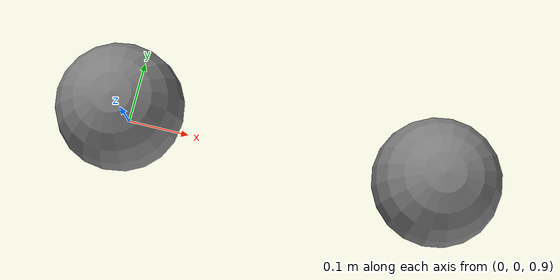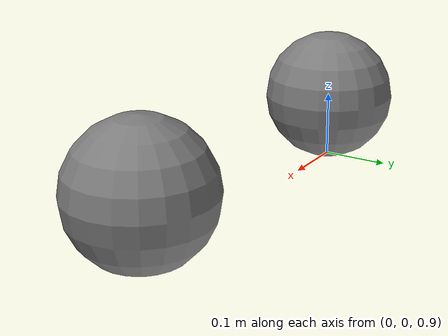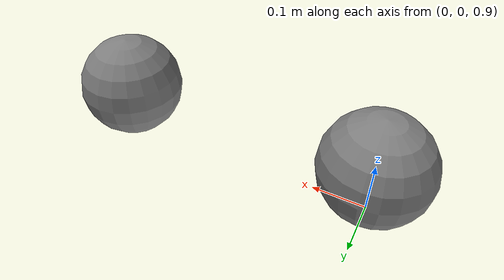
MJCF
<mujoco model="constrained_springs">
            <option timestep="0.002" integrator="implicitspringdamper" gravity="0 0 -10"/>
            <worldbody>
                <body name="b1" pos="0 0 1">
                    <joint name="j1" type="slide" axis="0 0 1"
                           stiffness="500" damping="20"/>
                    <geom type="sphere" size="0.1" mass="1"/>
                </body>
                <body name="b2" pos="0.5 0 1">
                    <joint name="j2" type="slide" axis="0 0 1"
                           stiffness="500" damping="20"/>
                    <geom type="sphere" size="0.1" mass="1"/>
                </body>
            </worldbody>
            <equality>
                <connect body1="b1" body2="b2" anchor="0.25 0 0"/>
            </equality>
        </mujoco>
